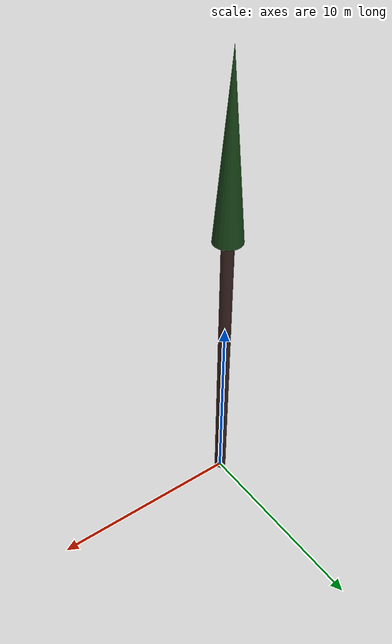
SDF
<?xml version="1.0" ?>
<sdf version="1.10">
  <model name="cypres_provence_03">
    <static>true</static>

    <!-- Tronc -->
    <link name="trunk">
      <pose>0 0 7.4607333283366 0 0 0</pose>
      <visual name="trunk_visual">
        <geometry>
          <cylinder>
            <radius>0.3124731475311851</radius>
            <length>14.9214666566732</length>
          </cylinder>
        </geometry>
        <material>
          <ambient>0.24 0.15 0.14 1</ambient>
          <diffuse>0.24 0.15 0.14 1</diffuse>
          <specular>0.1 0.1 0.1 1</specular>
        </material>
      </visual>
      <collision name="trunk_collision">
        <geometry>
          <cylinder>
            <radius>0.3124731475311851</radius>
            <length>14.9214666566732</length>
          </cylinder>
        </geometry>
      </collision>
    </link>

    <!-- Feuillage -->
    <link name="crown">
      <pose>0 0 19.003938113351566 0 0 0</pose>
      <visual name="crown_visual">
        <geometry>
          <cone>
              <radius>0.7270593262507143</radius>
              <length>8.164942913356736</length>
            </cone>
        </geometry>
        <material>
          <ambient>0.10 0.29 0.10 1</ambient>
          <diffuse>0.10 0.29 0.10 1</diffuse>
          <specular>0.1 0.1 0.1 1</specular>
        </material>
      </visual>
      <collision name="crown_collision">
        <geometry>
          <sphere>
            <radius>0.5816474610005715</radius>
          </sphere>
        </geometry>
      </collision>
    </link>

    <!-- Joint tronc-feuillage -->
    <joint name="trunk_crown_joint" type="fixed">
      <parent>trunk</parent>
      <child>crown</child>
    </joint>

  </model>
</sdf>
